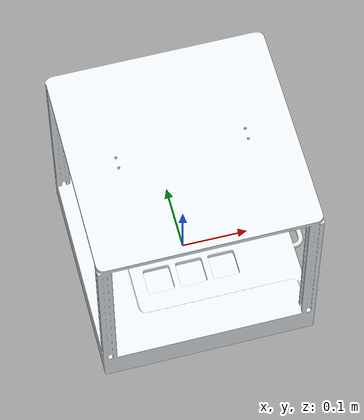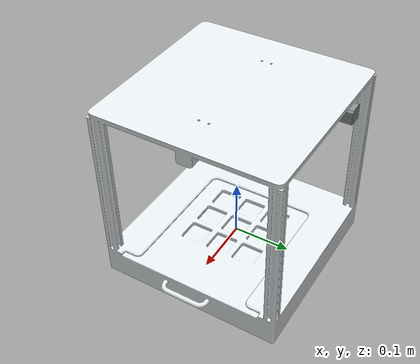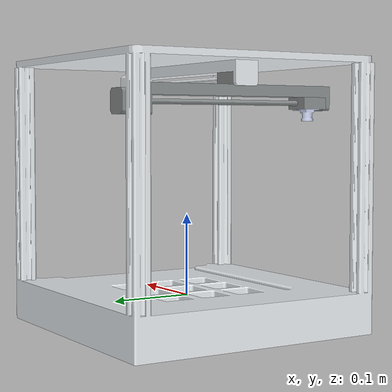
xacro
<?xml version="1.0" encoding="utf-8"?>
<robot name="Insect_Watcher" xmlns:xacro="http://ros.org/wiki/xacro">
  <link
    name="base_link">
    <inertial>
      <origin
        xyz="-0.00086422 -1.1102E-16 0.02434"
        rpy="0 0 0" />
      <mass
        value="15.038" />
      <inertia
        ixx="0.12715"
        ixy="-8.7269E-18"
        ixz="0.0020477"
        iyy="0.12272"
        iyz="1.2118E-18"
        izz="0.24325" />
    </inertial>
    <visual>
      <origin
        xyz="0 0 0"
        rpy="0 0 0" />
      <geometry>
        <mesh
          filename="package://Insect_Watcher/meshes/base_link.STL" />
      </geometry>
      <material
        name="">
        <color
          rgba="0.89804 0.91765 0.92941 1" />
      </material>
    </visual>
    <collision>
      <origin
        xyz="0 0 0"
        rpy="0 0 0" />
      <geometry>
        <mesh
          filename="package://Insect_Watcher/meshes/base_link.STL" />
      </geometry>
    </collision>
  </link>
  <link
    name="xlider_link">
    <inertial>
      <origin
        xyz="0.016 0.024695 -0.0075261"
        rpy="0 0 0" />
      <mass
        value="1.0009" />
      <inertia
        ixx="0.0047234"
        ixy="-5.9699E-18"
        ixz="3.7785E-20"
        iyy="0.00010039"
        iyz="2.4328E-05"
        izz="0.0047657" />
    </inertial>
    <visual>
      <origin
        xyz="0 0 0"
        rpy="0 0 0" />
      <geometry>
        <mesh
          filename="package://Insect_Watcher/meshes/xlider_link.STL" />
      </geometry>
      <material
        name="">
        <color
          rgba="0.52941 0.54902 0.54902 1" />
      </material>
    </visual>
    <collision>
      <origin
        xyz="0 0 0"
        rpy="0 0 0" />
      <geometry>
        <mesh
          filename="package://Insect_Watcher/meshes/xlider_link.STL" />
      </geometry>
    </collision>
  </link>
  <joint
    name="xslider_joint"
    type="prismatic">
    <origin
      xyz="-0.123 -0.015 0.2549"
      rpy="0 0 0" />
    <parent
      link="base_link" />
    <child
      link="xlider_link" />
    <axis
      xyz="1 0 0" />
    <limit
      lower="0"
      upper="0.203"
      effort="30"
      velocity="0.2" />
  </joint>
  <link
    name="yslider_link">
    <inertial>
      <origin
        xyz="0.015 0.016 0.0070462"
        rpy="0 0 0" />
      <mass
        value="0.095569" />
      <inertia
        ixx="9.7906E-06"
        ixy="-3.0698E-21"
        ixz="-2.2036E-22"
        iyy="9.2937E-06"
        iyz="-3.7386E-22"
        izz="1.5746E-05" />
    </inertial>
    <visual>
      <origin
        xyz="0 0 0"
        rpy="0 0 0" />
      <geometry>
        <mesh
          filename="package://Insect_Watcher/meshes/yslider_link.STL" />
      </geometry>
      <material
        name="">
        <color
          rgba="0.52941 0.54902 0.54902 1" />
      </material>
    </visual>
    <collision>
      <origin
        xyz="0 0 0"
        rpy="0 0 0" />
      <geometry>
        <mesh
          filename="package://Insect_Watcher/meshes/yslider_link.STL" />
      </geometry>
    </collision>
  </link>
  <joint
    name="yslider_joint"
    type="prismatic">
    <origin
      xyz="0.001 -0.1025 -0.027"
      rpy="0 0 0" />
    <parent
      link="xlider_link" />
    <child
      link="yslider_link" />
    <axis
      xyz="0 1 0" />
    <limit
      lower="0"
      upper="0.203"
      effort="30"
      velocity="0.2" />
  </joint>
  <link
    name="camera_link">
    <inertial>
      <origin
        xyz="-0.0082083 5.5511E-17 0"
        rpy="0 0 0" />
      <mass
        value="0.0023009" />
      <inertia
        ixx="9.2019E-08"
        ixy="4.8185E-24"
        ixz="-2.1244E-23"
        iyy="9.5904E-08"
        iyz="-1.8189E-24"
        izz="9.3405E-08" />
    </inertial>
    <visual>
      <origin
        xyz="0 0 0"
        rpy="0 0 0" />
      <geometry>
        <mesh
          filename="package://Insect_Watcher/meshes/camera_link.STL" />
      </geometry>
      <material
        name="">
        <color
          rgba="0.79216 0.81961 0.93333 1" />
      </material>
    </visual>
    <collision>
      <origin
        xyz="0 0 0"
        rpy="0 0 0" />
      <geometry>
        <mesh
          filename="package://Insect_Watcher/meshes/camera_link.STL" />
      </geometry>
    </collision>
  </link>
  <joint
    name="camera_joint"
    type="fixed">
    <origin
      xyz="0.015 0.016 -0.014"
      rpy="0 1.5708 0" />
    <parent
      link="yslider_link" />
    <child
      link="camera_link" />
    <axis
      xyz="0 0 0" />
  </joint>
</robot>
